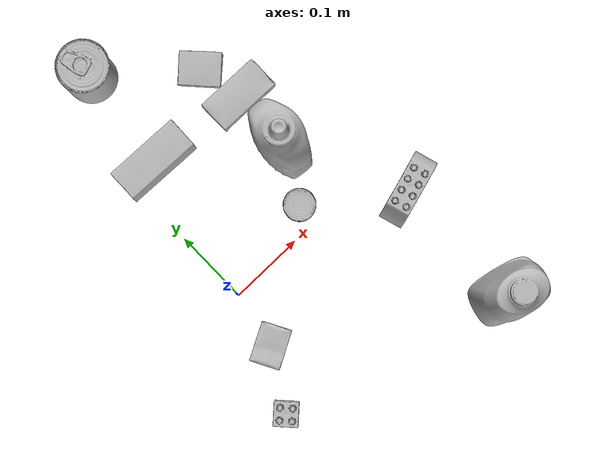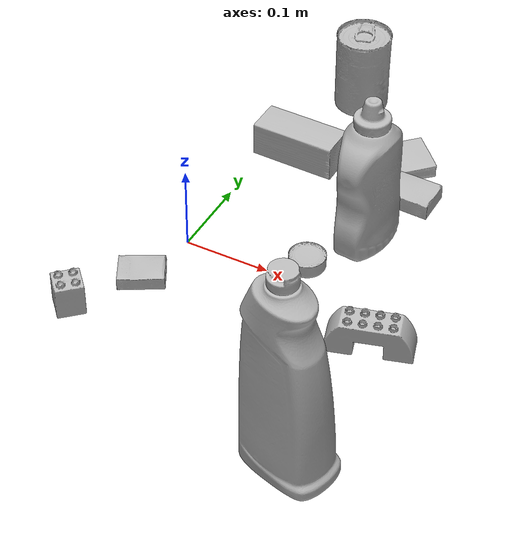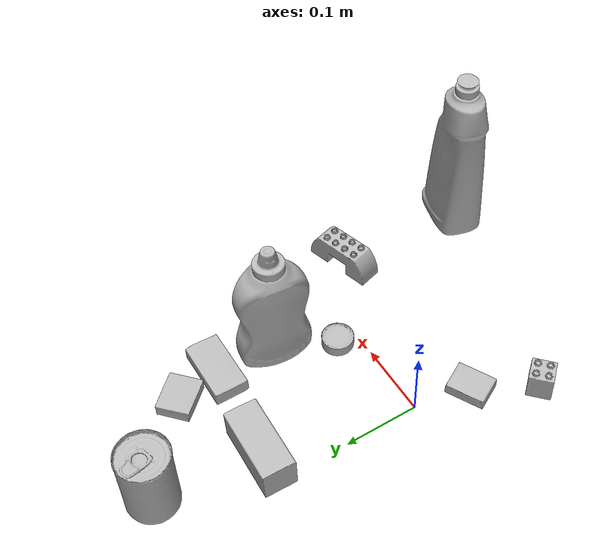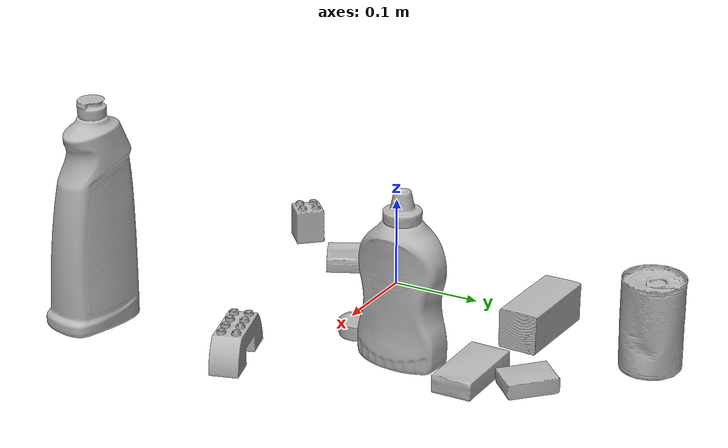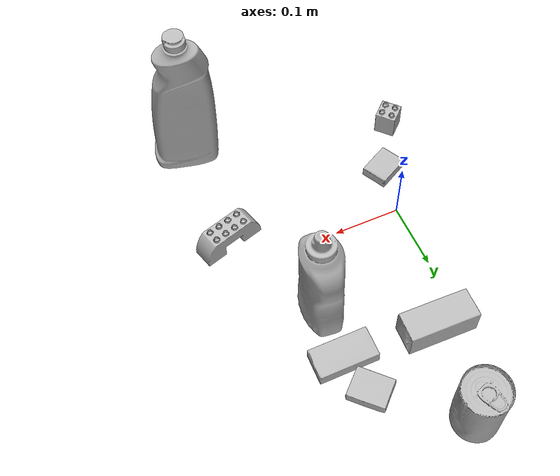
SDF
<sdf version="1.4">
  <world name="default">
    <light name="light1" type="point">
      <pose>0 0 1 0 0 0</pose>
      <diffuse>3 3 3 1</diffuse>
      <specular>3 3 3 1</specular>
    </light>
    <light name="light2" type="point">
      <pose>0 0.5 2 0 0 0</pose>
      <diffuse>1 1 1 1</diffuse>
      <specular>1 1 1 1</specular>
    </light>
    <light name="light3" type="point">
      <pose>0 0.5 2 0 0 0</pose>
      <diffuse>3 3 3 1</diffuse>
      <specular>3 3 3 1</specular>
    </light>
    <scene>
      <ambient>0.7 0.7 0.7</ambient>
    </scene>
    <model name="bottle1">
      <link name="link_bottle1">
        <collision name="default">
          <geometry>
            <mesh>
              <uri>model://bleach_cleanser/collision_meshes/collision.obj</uri>
              <scale>1.0 1.0 1.0</scale>
            </mesh>
          </geometry>
          <surface>
            <friction>
              <ode>
                <mu>0.5</mu>
                <mu2>0.5</mu2>
              </ode>
            </friction>
          <contact>
        <ode>
            <max_vel>0</max_vel>
            <min_depth>0.0001</min_depth>
            <kp>1e8</kp>
        </ode>
    </contact></surface>
        </collision>
        <visual name="default">
          <geometry>
            <mesh>
              <uri>model://bleach_cleanser/visual_meshes/visual.dae</uri>
              <scale>1.0 1.0 1.0</scale>
            </mesh>
          </geometry>
        </visual>
        <inertial>
          <mass>0.7954697608947754</mass>
          <pose>0.00012193184375064448 0.0037838825955986977 -0.02442161552608013 -0.0738167061583634 0.000420116841178447 -0.006875049257496471</pose>
          <inertia>
            <ixx>0.003871667</ixx>
            <iyy>0.0036078263</iyy>
            <izz>0.00066195446</izz>
            <ixy>0</ixy>
            <ixz>0</ixz>
            <iyz>0</iyz>
          </inertia>
        </inertial>
      </link>
      <pose>0.24685406684875488 -0.23451180756092072 0.12584266066551208 -0.00026713670465466184 -0.0021892608170370753 1.318117125008688</pose>
    </model>
    <model name="bottle2">
      <link name="link_bottle2">
        <collision name="default">
          <geometry>
            <mesh>
              <uri>model://mustard_bottle/collision_meshes/collision.obj</uri>
              <scale>1.0 1.0 1.0</scale>
            </mesh>
          </geometry>
          <surface>
            <friction>
              <ode>
                <mu>0.5</mu>
                <mu2>0.5</mu2>
              </ode>
            </friction>
          <contact>
        <ode>
            <max_vel>0</max_vel>
            <min_depth>0.0001</min_depth>
            <kp>1e8</kp>
        </ode>
    </contact></surface>
        </collision>
        <visual name="default">
          <geometry>
            <mesh>
              <uri>model://mustard_bottle/visual_meshes/visual.dae</uri>
              <scale>1.0 1.0 1.0</scale>
            </mesh>
          </geometry>
        </visual>
        <inertial>
          <mass>0.5118113160133362</mass>
          <pose>0.0005032453336752951 -0.00015647397958673537 -0.017475785687565804 0.0004182313596805905 0.000946575919178121 0.024853765212265823</pose>
          <inertia>
            <ixx>0.00142123</ixx>
            <iyy>0.0012470091</iyy>
            <izz>0.0003745659</izz>
            <ixy>0</ixy>
            <ixz>0</ixz>
            <iyz>0</iyz>
          </inertia>
        </inertial>
      </link>
      <pose>0.1721602976322174 0.10146739333868027 0.09613317251205444 0.004658317761224854 -0.0045644653529308245 -0.12647295249172494</pose>
    </model>
    <model name="toy1">
      <link name="link_toy1">
        <collision name="default">
          <geometry>
            <mesh>
              <uri>model://b_lego_duplo/collision_meshes/collision.obj</uri>
              <scale>1.0 1.0 1.0</scale>
            </mesh>
          </geometry>
          <surface>
            <friction>
              <ode>
                <mu>0.5</mu>
                <mu2>0.5</mu2>
              </ode>
            </friction>
          <contact>
        <ode>
            <max_vel>0</max_vel>
            <min_depth>0.0001</min_depth>
            <kp>1e8</kp>
        </ode>
    </contact></surface>
        </collision>
        <visual name="default">
          <geometry>
            <mesh>
              <uri>model://b_lego_duplo/visual_meshes/visual.dae</uri>
              <scale>1.0 1.0 1.0</scale>
            </mesh>
          </geometry>
        </visual>
        <inertial>
          <mass>0.04622781649231911</mass>
          <pose>-0.00011053043272113428 -9.152668098977301e-06 0.0019294294761493802 -0.037494565787594906 -0.026354503997733224 0.45188645636516256</pose>
          <inertia>
            <ixx>9.46087e-06</ixx>
            <iyy>9.524471e-06</iyy>
            <izz>8.429326e-06</izz>
            <ixy>0</ixy>
            <ixz>0</ixz>
            <iyz>0</iyz>
          </inertia>
        </inertial>
      </link>
      <pose>-0.06003662571310997 -0.14991772174835205 0.021815001964569092 -6.289407445681589e-07 2.6039620131220106e-07 -0.8215196589106494</pose>
    </model>
    <model name="toy2">
      <link name="link_toy2">
        <collision name="default">
          <geometry>
            <mesh>
              <uri>model://e_lego_duplo/collision_meshes/collision.obj</uri>
              <scale>1.0 1.0 1.0</scale>
            </mesh>
          </geometry>
          <surface>
            <friction>
              <ode>
                <mu>0.5</mu>
                <mu2>0.5</mu2>
              </ode>
            </friction>
          <contact>
        <ode>
            <max_vel>0</max_vel>
            <min_depth>0.0001</min_depth>
            <kp>1e8</kp>
        </ode>
    </contact></surface>
        </collision>
        <visual name="default">
          <geometry>
            <mesh>
              <uri>model://e_lego_duplo/visual_meshes/visual.dae</uri>
              <scale>1.0 1.0 1.0</scale>
            </mesh>
          </geometry>
        </visual>
        <inertial>
          <mass>0.08809097856283188</mass>
          <pose>0.00032560486579313874 0.00023485404381062835 0.0019521467620506883 -0.022567425824888195 -6.82459351116558e-05 -0.007625145117383363</pose>
          <inertia>
            <ixx>1.836988e-05</ixx>
            <iyy>7.539474e-05</iyy>
            <izz>7.34193e-05</izz>
            <ixy>0</ixy>
            <ixz>0</ixz>
            <iyz>0</iyz>
          </inertia>
        </inertial>
      </link>
      <pose>0.24955514073371887 -0.053378570824861526 0.021787911653518677 0.0017009277251864578 9.070322765313646e-05 -2.8503323980924318</pose>
    </model>
    <model name="can1">
      <link name="link_can1">
        <collision name="default">
          <geometry>
            <mesh>
              <uri>model://tomato_soup_can/collision_meshes/collision.obj</uri>
              <scale>1.0 1.0 1.0</scale>
            </mesh>
          </geometry>
          <surface>
            <friction>
              <ode>
                <mu>0.5</mu>
                <mu2>0.5</mu2>
              </ode>
            </friction>
          <contact>
        <ode>
            <max_vel>0</max_vel>
            <min_depth>0.0001</min_depth>
            <kp>1e8</kp>
        </ode>
    </contact></surface>
        </collision>
        <visual name="default">
          <geometry>
            <mesh>
              <uri>model://tomato_soup_can/visual_meshes/visual.dae</uri>
              <scale>1.0 1.0 1.0</scale>
            </mesh>
          </geometry>
        </visual>
        <inertial>
          <mass>0.4347945749759674</mass>
          <pose>0.0001265227037947625 0.00010805525380419567 -0.0017973979702219367 0.007020064127759274 0.0004229940757469139 -0.009903323281130803</pose>
          <inertia>
            <ixx>0.00047671542</ixx>
            <iyy>0.00047396024</iyy>
            <izz>0.00024707714</izz>
            <ixy>0</ixy>
            <ixz>0</ixz>
            <iyz>0</iyz>
          </inertia>
        </inertial>
      </link>
      <pose>0.058063287287950516 0.3315192759037018 0.05127400532364845 -2.4036696191926465e-07 -2.400590983154071e-07 -3.1212368066093137</pose>
    </model>
    <model name="can2">
      <link name="link_can2">
        <collision name="default">
          <geometry>
            <mesh>
              <uri>model://tuna_fish_can/collision_meshes/collision.obj</uri>
              <scale>0.5 0.5 0.5</scale>
            </mesh>
          </geometry>
          <surface>
            <friction>
              <ode>
                <mu>0.5</mu>
                <mu2>0.5</mu2>
              </ode>
            </friction>
          <contact>
        <ode>
            <max_vel>0</max_vel>
            <min_depth>0.0001</min_depth>
            <kp>1e8</kp>
        </ode>
    </contact></surface>
        </collision>
        <visual name="default">
          <geometry>
            <mesh>
              <uri>model://tuna_fish_can/visual_meshes/visual.dae</uri>
              <scale>0.5 0.5 0.5</scale>
            </mesh>
          </geometry>
        </visual>
        <inertial>
          <mass>0.02951119653880596</mass>
          <pose>-2.0361847418826073e-05 -7.256335720740026e-06 -0.0005269026733003557 -0.0017944763161136105 0.00017161533088142807 0.2405366956082085</pose>
          <inertia>
            <ixx>3.989958e-06</ixx>
            <iyy>3.9733272e-06</iyy>
            <izz>6.827389e-06</izz>
            <ixy>0</ixy>
            <ixz>0</ixz>
            <iyz>0</iyz>
          </inertia>
        </inertial>
      </link>
      <pose>0.13548077642917633 0.028573347255587578 0.00851999968290329 6.590801647499145e-09 5.300763804137333e-09 -2.722562549845275</pose>
    </model>
    <model name="box1">
      <link name="link_box1">
        <collision name="default">
          <geometry>
            <mesh>
              <uri>model://sugar_box/collision_meshes/collision.obj</uri>
              <scale>0.5 0.5 0.5</scale>
            </mesh>
          </geometry>
          <surface>
            <friction>
              <ode>
                <mu>0.5</mu>
                <mu2>0.5</mu2>
              </ode>
            </friction>
          <contact>
        <ode>
            <max_vel>0</max_vel>
            <min_depth>0.0001</min_depth>
            <kp>1e8</kp>
        </ode>
    </contact></surface>
        </collision>
        <visual name="default">
          <geometry>
            <mesh>
              <uri>model://sugar_box/visual_meshes/visual.dae</uri>
              <scale>0.5 0.5 0.5</scale>
            </mesh>
          </geometry>
        </visual>
        <inertial>
          <mass>0.10932230949401855</mass>
          <pose>0.0005171863595023751 1.924554817378521e-05 -0.00018182402709499002 -0.00040462630024242077 0.0010506636385781449 0.0026153787888990553</pose>
          <inertia>
            <ixx>2.277176e-05</ixx>
            <iyy>7.3603005e-05</iyy>
            <izz>8.811158e-05</izz>
            <ixy>0</ixy>
            <ixz>0</ixz>
            <iyz>0</iyz>
          </inertia>
        </inertial>
      </link>
      <pose>0.17722086608409882 0.18379278481006622 0.011415312997996807 -0.007160177499630588 -0.02007980625626898 3.122619226824266</pose>
    </model>
    <model name="box2">
      <link name="link_box2">
        <collision name="default">
          <geometry>
            <mesh>
              <uri>model://pudding_box/collision_meshes/collision.obj</uri>
              <scale>0.5 0.5 0.5</scale>
            </mesh>
          </geometry>
          <surface>
            <friction>
              <ode>
                <mu>0.5</mu>
                <mu2>0.5</mu2>
              </ode>
            </friction>
          <contact>
        <ode>
            <max_vel>0</max_vel>
            <min_depth>0.0001</min_depth>
            <kp>1e8</kp>
        </ode>
    </contact></surface>
        </collision>
        <visual name="default">
          <geometry>
            <mesh>
              <uri>model://pudding_box/visual_meshes/visual.dae</uri>
              <scale>0.5 0.5 0.5</scale>
            </mesh>
          </geometry>
        </visual>
        <inertial>
          <mass>0.061322033405303955</mass>
          <pose>0.00024474109522998333 0.00040339428232982755 -0.0002594413817860186 0.0052131013423229325 -0.006603797777692156 0.020079823300565562</pose>
          <inertia>
            <ixx>1.733035e-05</ixx>
            <iyy>1.1659984e-05</iyy>
            <izz>2.559279e-05</izz>
            <ixy>0</ixy>
            <ixz>0</ixz>
            <iyz>0</iyz>
          </inertia>
        </inertial>
      </link>
      <pose>0.16486620903015137 0.24233141541481018 0.009862912818789482 0.022346247067476524 -0.01138099891867136 0.7570579428046229</pose>
    </model>
    <model name="box3">
      <link name="link_box3">
        <collision name="default">
          <geometry>
            <mesh>
              <uri>model://cracker_box/collision_meshes/collision.obj</uri>
              <scale>0.25 0.25 0.25</scale>
            </mesh>
          </geometry>
          <surface>
            <friction>
              <ode>
                <mu>0.5</mu>
                <mu2>0.5</mu2>
              </ode>
            </friction>
          <contact>
        <ode>
            <max_vel>0</max_vel>
            <min_depth>0.0001</min_depth>
            <kp>1e8</kp>
        </ode>
    </contact></surface>
        </collision>
        <visual name="default">
          <geometry>
            <mesh>
              <uri>model://cracker_box/visual_meshes/visual.dae</uri>
              <scale>0.25 0.25 0.25</scale>
            </mesh>
          </geometry>
        </visual>
        <inertial>
          <mass>0.05027599632740021</mass>
          <pose>0.00023660380975343287 6.358561222441494e-05 -0.00042573834070935845 -0.0003162076618733006 -0.011106490531610344 0.00254679570085012</pose>
          <inertia>
            <ixx>7.992481e-06</ixx>
            <iyy>1.3197154e-05</iyy>
            <izz>1.8833553e-05</izz>
            <ixy>0</ixy>
            <ixz>0</ixz>
            <iyz>0</iyz>
          </inertia>
        </inertial>
      </link>
      <pose>-0.014901733957231045 -0.0745144709944725 0.009096027351915836 -0.01405056184564527 -0.005016567207738385 0.48922403955476884</pose>
    </model>
    <model name="box4">
      <link name="link_box4">
        <collision name="default">
          <geometry>
            <mesh>
              <uri>model://wood_block/collision_meshes/collision.obj</uri>
              <scale>0.5 0.5 0.5</scale>
            </mesh>
          </geometry>
          <surface>
            <friction>
              <ode>
                <mu>0.5</mu>
                <mu2>0.5</mu2>
              </ode>
            </friction>
          <contact>
        <ode>
            <max_vel>0</max_vel>
            <min_depth>0.0001</min_depth>
            <kp>1e8</kp>
        </ode>
    </contact></surface>
        </collision>
        <visual name="default">
          <geometry>
            <mesh>
              <uri>model://wood_block/visual_meshes/visual.dae</uri>
              <scale>0.5 0.5 0.5</scale>
            </mesh>
          </geometry>
        </visual>
        <inertial>
          <mass>0.30035653710365295</mass>
          <pose>-2.9066577553749084e-06 -0.000285404734313488 0.00013204291462898254 -0.05221128362191582 -0.005192695718477931 -0.0068613783725326285</pose>
          <inertia>
            <ixx>0.00010048062</ixx>
            <iyy>0.00031741828</iyy>
            <izz>0.00031623102</izz>
            <ixy>0</ixy>
            <ixz>0</ixz>
            <iyz>0</iyz>
          </inertia>
        </inertial>
      </link>
      <pose>0.040989477187395096 0.1966564953327179 0.022629253566265106 -0.005208569883371497 0.0057186943669878055 -0.030798790338542187</pose>
    </model>
  <physics type="ode">
      <max_contacts>50</max_contacts>
      <ode>
        <solver>
          <type>quick</type>
          <iters>75</iters>
        </solver>
        <constraints>
          <contact_max_correcting_vel>0</contact_max_correcting_vel>
          <contact_surface_layer>0</contact_surface_layer>
        </constraints>
      </ode>
    </physics></world>
</sdf>
